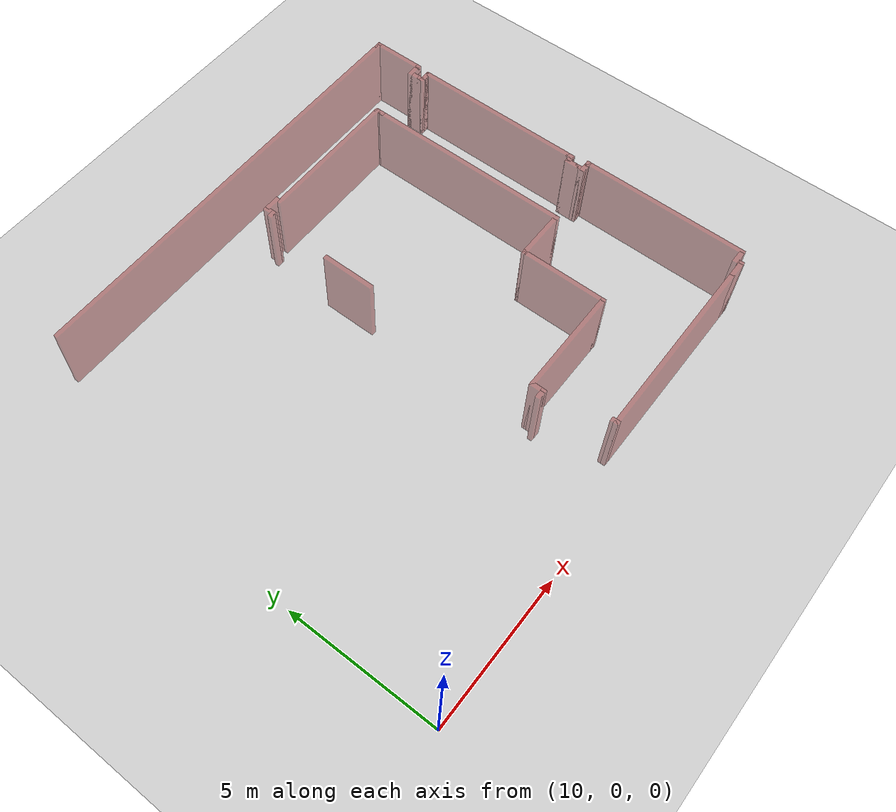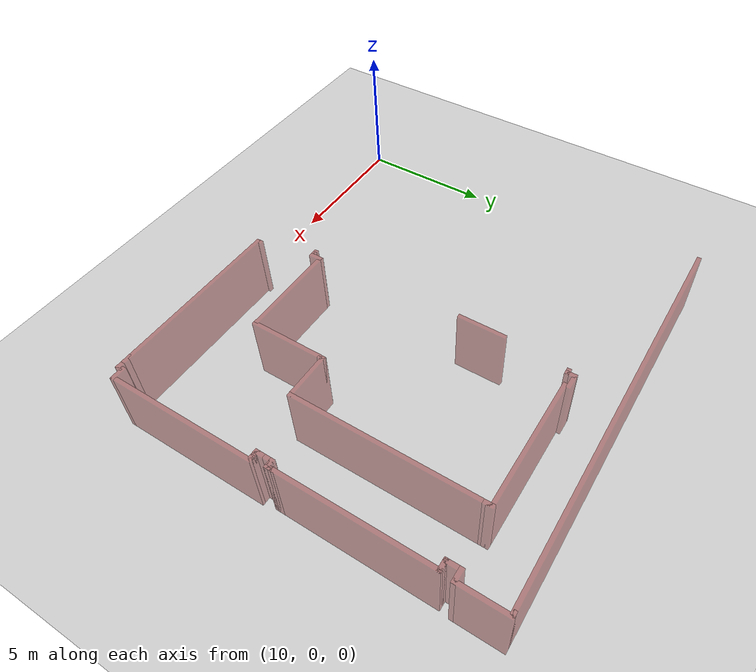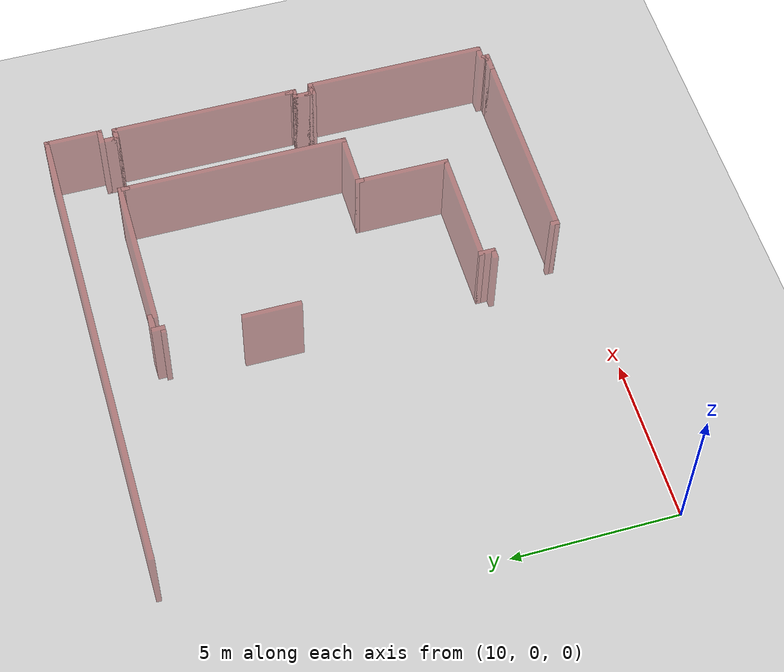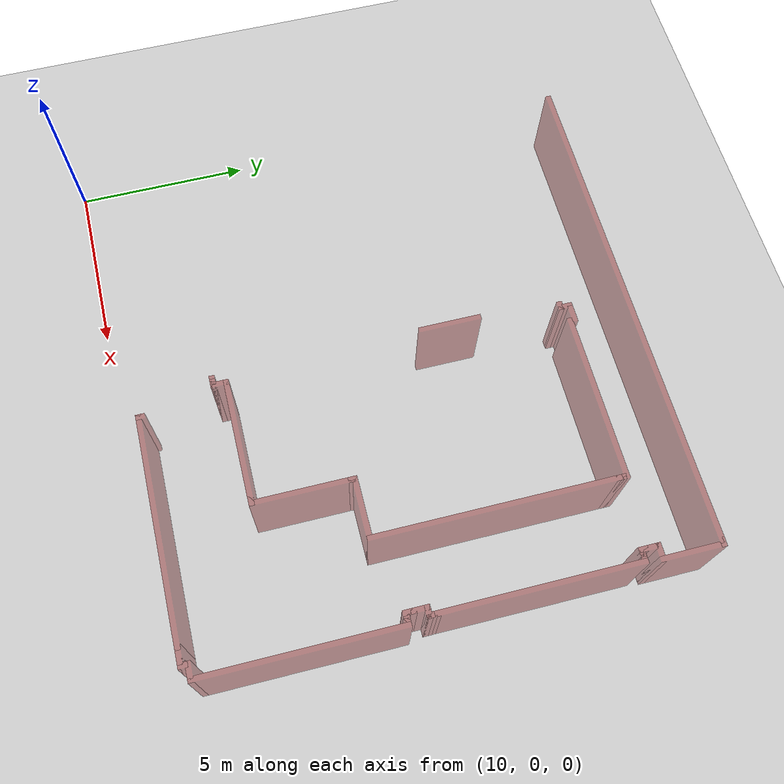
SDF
<sdf version="1.7">
 <world name="default">
  <model name="ground_plane">
   <static>1</static>
   <link name="link">
    <collision name="collision">
     <geometry><plane><normal>0 0 1</normal><size>150 150</size></plane></geometry>
     <surface>
      <contact><collide_bitmask>65535</collide_bitmask></contact>
      <friction><ode><mu>100</mu><mu2>50</mu2></ode></friction>
     </surface>
    </collision>
    <visual name="visual">
     <cast_shadows>0</cast_shadows>
     <geometry><plane><normal>0 0 1</normal><size>100 100</size></plane></geometry>
     <material>
      <ambient>0.8 0.8 0.8 1.0</ambient>
      <diffuse>0.8 0.8 0.8 1.0</diffuse>
      <specular>0.1 0.1 0.1 1.0</specular>
      <pbr><metal><albedo>0.8 0.8 0.8 1.0</albedo><metalness>0.0</metalness><roughness>0.9</roughness></metal></pbr>
     </material>
    </visual>
   </link>
  </model>
  <model name="acopian_4th_floor">
   <pose>-1.6204 7.29653 0 0 -0 0</pose>
   <link name="Wall_284">
    <collision name="Wall_284_Collision">
     <geometry><box><size>14.25 0.15 2.5</size></box></geometry>
     <pose>0 0 1.25 0 -0 0</pose>
    </collision>
    <visual name="Wall_284_Visual">
     <pose>0 0 1.25 0 -0 0</pose>
     <geometry><box><size>14.25 0.15 2.5</size></box></geometry>
     <material>
      <ambient>0.5 0.0 0.0 0.4</ambient>
      <diffuse>0.5 0.0 0.0 0.4</diffuse>
      <specular>0.1 0.1 0.1 0.4</specular>
      <pbr><metal><albedo>0.5 0.0 0.0 0.4</albedo><metalness>0.1</metalness><roughness>0.8</roughness></metal></pbr>
     </material>
     <meta><layer>0</layer></meta>
    </visual>
    <pose>20.1253 7.22153 0 0 -0 0</pose>
   </link>
   <link name="Wall_288">
    <collision name="Wall_288_Collision">
     <geometry><box><size>0.25 0.15 2.5</size></box></geometry>
     <pose>0 0 1.25 0 -0 0</pose>
    </collision>
    <visual name="Wall_288_Visual">
     <pose>0 0 1.25 0 -0 0</pose>
     <geometry><box><size>0.25 0.15 2.5</size></box></geometry>
     <material>
      <ambient>0.5 0.0 0.0 0.4</ambient>
      <diffuse>0.5 0.0 0.0 0.4</diffuse>
      <specular>0.1 0.1 0.1 0.4</specular>
      <pbr><metal><albedo>0.5 0.0 0.0 0.4</albedo><metalness>0.1</metalness><roughness>0.8</roughness></metal></pbr>
     </material>
     <meta><layer>0</layer></meta>
    </visual>
    <pose>27.2253 7.22153 0 0 -0 0</pose>
   </link>
   <link name="Wall_289">
    <collision name="Wall_289_Collision">
     <geometry><box><size>1.75 0.15 2.5</size></box></geometry>
     <pose>0 0 1.25 0 -0 0</pose>
    </collision>
    <visual name="Wall_289_Visual">
     <pose>0 0 1.25 0 -0 0</pose>
     <geometry><box><size>1.75 0.15 2.5</size></box></geometry>
     <material>
      <ambient>0.5 0.0 0.0 0.4</ambient>
      <diffuse>0.5 0.0 0.0 0.4</diffuse>
      <specular>0.1 0.1 0.1 0.4</specular>
      <pbr><metal><albedo>0.5 0.0 0.0 0.4</albedo><metalness>0.1</metalness><roughness>0.8</roughness></metal></pbr>
     </material>
     <meta><layer>0</layer></meta>
    </visual>
    <pose>27.2753 6.42153 0 0 -0 -1.5708</pose>
   </link>
   <link name="Wall_294">
    <collision name="Wall_294_Collision">
     <geometry><box><size>0.5 0.15 2.5</size></box></geometry>
     <pose>0 0 1.25 0 -0 0</pose>
    </collision>
    <visual name="Wall_294_Visual">
     <pose>0 0 1.25 0 -0 0</pose>
     <geometry><box><size>0.5 0.15 2.5</size></box></geometry>
     <material>
      <ambient>0.5 0.0 0.0 0.4</ambient>
      <diffuse>0.5 0.0 0.0 0.4</diffuse>
      <specular>0.1 0.1 0.1 0.4</specular>
      <pbr><metal><albedo>0.5 0.0 0.0 0.4</albedo><metalness>0.1</metalness><roughness>0.8</roughness></metal></pbr>
     </material>
     <meta><layer>0</layer></meta>
    </visual>
    <pose>27.1003 5.62153 0 0 -0 3.14159</pose>
   </link>
   <link name="Wall_295">
    <collision name="Wall_295_Collision">
     <geometry><box><size>0.5 0.15 2.5</size></box></geometry>
     <pose>0 0 1.25 0 -0 0</pose>
    </collision>
    <visual name="Wall_295_Visual">
     <pose>0 0 1.25 0 -0 0</pose>
     <geometry><box><size>0.5 0.15 2.5</size></box></geometry>
     <material>
      <ambient>0.5 0.0 0.0 0.4</ambient>
      <diffuse>0.5 0.0 0.0 0.4</diffuse>
      <specular>0.1 0.1 0.1 0.4</specular>
      <pbr><metal><albedo>0.5 0.0 0.0 0.4</albedo><metalness>0.1</metalness><roughness>0.8</roughness></metal></pbr>
     </material>
     <meta><layer>0</layer></meta>
    </visual>
    <pose>26.9253 5.44653 0 0 -0 -1.5708</pose>
   </link>
   <link name="Wall_300">
    <collision name="Wall_300_Collision">
     <geometry><box><size>0.25 0.15 2.5</size></box></geometry>
     <pose>0 0 1.25 0 -0 0</pose>
    </collision>
    <visual name="Wall_300_Visual">
     <pose>0 0 1.25 0 -0 0</pose>
     <geometry><box><size>0.25 0.15 2.5</size></box></geometry>
     <material>
      <ambient>0.5 0.0 0.0 0.4</ambient>
      <diffuse>0.5 0.0 0.0 0.4</diffuse>
      <specular>0.1 0.1 0.1 0.4</specular>
      <pbr><metal><albedo>0.5 0.0 0.0 0.4</albedo><metalness>0.1</metalness><roughness>0.8</roughness></metal></pbr>
     </material>
     <meta><layer>0</layer></meta>
    </visual>
    <pose>26.9253 5.22153 0 0 -0 -1.5708</pose>
   </link>
   <link name="Wall_301">
    <collision name="Wall_301_Collision">
     <geometry><box><size>0.25 0.15 2.5</size></box></geometry>
     <pose>0 0 1.25 0 -0 0</pose>
    </collision>
    <visual name="Wall_301_Visual">
     <pose>0 0 1.25 0 -0 0</pose>
     <geometry><box><size>0.25 0.15 2.5</size></box></geometry>
     <material>
      <ambient>0.5 0.0 0.0 0.4</ambient>
      <diffuse>0.5 0.0 0.0 0.4</diffuse>
      <specular>0.1 0.1 0.1 0.4</specular>
      <pbr><metal><albedo>0.5 0.0 0.0 0.4</albedo><metalness>0.1</metalness><roughness>0.8</roughness></metal></pbr>
     </material>
     <meta><layer>0</layer></meta>
    </visual>
    <pose>26.9753 5.17153 0 0 -0 0</pose>
   </link>
   <link name="Wall_302">
    <collision name="Wall_302_Collision">
     <geometry><box><size>0.25 0.15 2.5</size></box></geometry>
     <pose>0 0 1.25 0 -0 0</pose>
    </collision>
    <visual name="Wall_302_Visual">
     <pose>0 0 1.25 0 -0 0</pose>
     <geometry><box><size>0.25 0.15 2.5</size></box></geometry>
     <material>
      <ambient>0.5 0.0 0.0 0.4</ambient>
      <diffuse>0.5 0.0 0.0 0.4</diffuse>
      <specular>0.1 0.1 0.1 0.4</specular>
      <pbr><metal><albedo>0.5 0.0 0.0 0.4</albedo><metalness>0.1</metalness><roughness>0.8</roughness></metal></pbr>
     </material>
     <meta><layer>0</layer></meta>
    </visual>
    <pose>27.0753 5.17153 0 0 -0 0</pose>
   </link>
   <link name="Wall_303">
    <collision name="Wall_303_Collision">
     <geometry><box><size>0.25 0.15 2.5</size></box></geometry>
     <pose>0 0 1.25 0 -0 0</pose>
    </collision>
    <visual name="Wall_303_Visual">
     <pose>0 0 1.25 0 -0 0</pose>
     <geometry><box><size>0.25 0.15 2.5</size></box></geometry>
     <material>
      <ambient>0.5 0.0 0.0 0.4</ambient>
      <diffuse>0.5 0.0 0.0 0.4</diffuse>
      <specular>0.1 0.1 0.1 0.4</specular>
      <pbr><metal><albedo>0.5 0.0 0.0 0.4</albedo><metalness>0.1</metalness><roughness>0.8</roughness></metal></pbr>
     </material>
     <meta><layer>0</layer></meta>
    </visual>
    <pose>27.1753 5.17153 0 0 -0 0</pose>
   </link>
   <link name="Wall_304">
    <collision name="Wall_304_Collision">
     <geometry><box><size>5.5 0.15 2.5</size></box></geometry>
     <pose>0 0 1.25 0 -0 0</pose>
    </collision>
    <visual name="Wall_304_Visual">
     <pose>0 0 1.25 0 -0 0</pose>
     <geometry><box><size>5.5 0.15 2.5</size></box></geometry>
     <material>
      <ambient>0.5 0.0 0.0 0.4</ambient>
      <diffuse>0.5 0.0 0.0 0.4</diffuse>
      <specular>0.1 0.1 0.1 0.4</specular>
      <pbr><metal><albedo>0.5 0.0 0.0 0.4</albedo><metalness>0.1</metalness><roughness>0.8</roughness></metal></pbr>
     </material>
     <meta><layer>0</layer></meta>
    </visual>
    <pose>27.2253 2.49653 0 0 -0 -1.5708</pose>
   </link>
   <link name="Wall_306">
    <collision name="Wall_306_Collision">
     <geometry><box><size>0.25 0.15 2.5</size></box></geometry>
     <pose>0 0 1.25 0 -0 0</pose>
    </collision>
    <visual name="Wall_306_Visual">
     <pose>0 0 1.25 0 -0 0</pose>
     <geometry><box><size>0.25 0.15 2.5</size></box></geometry>
     <material>
      <ambient>0.5 0.0 0.0 0.4</ambient>
      <diffuse>0.5 0.0 0.0 0.4</diffuse>
      <specular>0.1 0.1 0.1 0.4</specular>
      <pbr><metal><albedo>0.5 0.0 0.0 0.4</albedo><metalness>0.1</metalness><roughness>0.8</roughness></metal></pbr>
     </material>
     <meta><layer>0</layer></meta>
    </visual>
    <pose>27.2253 -0.228473 0 0 -0 -1.5708</pose>
   </link>
   <link name="Wall_307">
    <collision name="Wall_307_Collision">
     <geometry><box><size>0.25 0.15 2.5</size></box></geometry>
     <pose>0 0 1.25 0 -0 0</pose>
    </collision>
    <visual name="Wall_307_Visual">
     <pose>0 0 1.25 0 -0 0</pose>
     <geometry><box><size>0.25 0.15 2.5</size></box></geometry>
     <material>
      <ambient>0.5 0.0 0.0 0.4</ambient>
      <diffuse>0.5 0.0 0.0 0.4</diffuse>
      <specular>0.1 0.1 0.1 0.4</specular>
      <pbr><metal><albedo>0.5 0.0 0.0 0.4</albedo><metalness>0.1</metalness><roughness>0.8</roughness></metal></pbr>
     </material>
     <meta><layer>0</layer></meta>
    </visual>
    <pose>27.2253 -0.328473 0 0 -0 -1.5708</pose>
   </link>
   <link name="Wall_308">
    <collision name="Wall_308_Collision">
     <geometry><box><size>0.25 0.15 2.5</size></box></geometry>
     <pose>0 0 1.25 0 -0 0</pose>
    </collision>
    <visual name="Wall_308_Visual">
     <pose>0 0 1.25 0 -0 0</pose>
     <geometry><box><size>0.25 0.15 2.5</size></box></geometry>
     <material>
      <ambient>0.5 0.0 0.0 0.4</ambient>
      <diffuse>0.5 0.0 0.0 0.4</diffuse>
      <specular>0.1 0.1 0.1 0.4</specular>
      <pbr><metal><albedo>0.5 0.0 0.0 0.4</albedo><metalness>0.1</metalness><roughness>0.8</roughness></metal></pbr>
     </material>
     <meta><layer>0</layer></meta>
    </visual>
    <pose>27.1753 -0.378473 0 0 -0 3.14159</pose>
   </link>
   <link name="Wall_309">
    <collision name="Wall_309_Collision">
     <geometry><box><size>0.25 0.15 2.5</size></box></geometry>
     <pose>0 0 1.25 0 -0 0</pose>
    </collision>
    <visual name="Wall_309_Visual">
     <pose>0 0 1.25 0 -0 0</pose>
     <geometry><box><size>0.25 0.15 2.5</size></box></geometry>
     <material>
      <ambient>0.5 0.0 0.0 0.4</ambient>
      <diffuse>0.5 0.0 0.0 0.4</diffuse>
      <specular>0.1 0.1 0.1 0.4</specular>
      <pbr><metal><albedo>0.5 0.0 0.0 0.4</albedo><metalness>0.1</metalness><roughness>0.8</roughness></metal></pbr>
     </material>
     <meta><layer>0</layer></meta>
    </visual>
    <pose>27.0753 -0.378473 0 0 -0 3.14159</pose>
   </link>
   <link name="Wall_310">
    <collision name="Wall_310_Collision">
     <geometry><box><size>0.5 0.15 2.5</size></box></geometry>
     <pose>0 0 1.25 0 -0 0</pose>
    </collision>
    <visual name="Wall_310_Visual">
     <pose>0 0 1.25 0 -0 0</pose>
     <geometry><box><size>0.5 0.15 2.5</size></box></geometry>
     <material>
      <ambient>0.5 0.0 0.0 0.4</ambient>
      <diffuse>0.5 0.0 0.0 0.4</diffuse>
      <specular>0.1 0.1 0.1 0.4</specular>
      <pbr><metal><albedo>0.5 0.0 0.0 0.4</albedo><metalness>0.1</metalness><roughness>0.8</roughness></metal></pbr>
     </material>
     <meta><layer>0</layer></meta>
    </visual>
    <pose>27.0253 -0.553473 0 0 -0 -1.5708</pose>
   </link>
   <link name="Wall_311">
    <collision name="Wall_311_Collision">
     <geometry><box><size>0.25 0.15 2.5</size></box></geometry>
     <pose>0 0 1.25 0 -0 0</pose>
    </collision>
    <visual name="Wall_311_Visual">
     <pose>0 0 1.25 0 -0 0</pose>
     <geometry><box><size>0.25 0.15 2.5</size></box></geometry>
     <material>
      <ambient>0.5 0.0 0.0 0.4</ambient>
      <diffuse>0.5 0.0 0.0 0.4</diffuse>
      <specular>0.1 0.1 0.1 0.4</specular>
      <pbr><metal><albedo>0.5 0.0 0.0 0.4</albedo><metalness>0.1</metalness><roughness>0.8</roughness></metal></pbr>
     </material>
     <meta><layer>0</layer></meta>
    </visual>
    <pose>27.0253 -0.778473 0 0 -0 -1.5708</pose>
   </link>
   <link name="Wall_312">
    <collision name="Wall_312_Collision">
     <geometry><box><size>0.25 0.15 2.5</size></box></geometry>
     <pose>0 0 1.25 0 -0 0</pose>
    </collision>
    <visual name="Wall_312_Visual">
     <pose>0 0 1.25 0 -0 0</pose>
     <geometry><box><size>0.25 0.15 2.5</size></box></geometry>
     <material>
      <ambient>0.5 0.0 0.0 0.4</ambient>
      <diffuse>0.5 0.0 0.0 0.4</diffuse>
      <specular>0.1 0.1 0.1 0.4</specular>
      <pbr><metal><albedo>0.5 0.0 0.0 0.4</albedo><metalness>0.1</metalness><roughness>0.8</roughness></metal></pbr>
     </material>
     <meta><layer>0</layer></meta>
    </visual>
    <pose>27.0253 -0.878473 0 0 -0 -1.5708</pose>
   </link>
   <link name="Wall_313">
    <collision name="Wall_313_Collision">
     <geometry><box><size>0.25 0.15 2.5</size></box></geometry>
     <pose>0 0 1.25 0 -0 0</pose>
    </collision>
    <visual name="Wall_313_Visual">
     <pose>0 0 1.25 0 -0 0</pose>
     <geometry><box><size>0.25 0.15 2.5</size></box></geometry>
     <material>
      <ambient>0.5 0.0 0.0 0.4</ambient>
      <diffuse>0.5 0.0 0.0 0.4</diffuse>
      <specular>0.1 0.1 0.1 0.4</specular>
      <pbr><metal><albedo>0.5 0.0 0.0 0.4</albedo><metalness>0.1</metalness><roughness>0.8</roughness></metal></pbr>
     </material>
     <meta><layer>0</layer></meta>
    </visual>
    <pose>27.0753 -0.928473 0 0 -0 0</pose>
   </link>
   <link name="Wall_314">
    <collision name="Wall_314_Collision">
     <geometry><box><size>0.25 0.15 2.5</size></box></geometry>
     <pose>0 0 1.25 0 -0 0</pose>
    </collision>
    <visual name="Wall_314_Visual">
     <pose>0 0 1.25 0 -0 0</pose>
     <geometry><box><size>0.25 0.15 2.5</size></box></geometry>
     <material>
      <ambient>0.5 0.0 0.0 0.4</ambient>
      <diffuse>0.5 0.0 0.0 0.4</diffuse>
      <specular>0.1 0.1 0.1 0.4</specular>
      <pbr><metal><albedo>0.5 0.0 0.0 0.4</albedo><metalness>0.1</metalness><roughness>0.8</roughness></metal></pbr>
     </material>
     <meta><layer>0</layer></meta>
    </visual>
    <pose>27.1753 -0.928473 0 0 -0 0</pose>
   </link>
   <link name="Wall_315">
    <collision name="Wall_315_Collision">
     <geometry><box><size>0.25 0.15 2.5</size></box></geometry>
     <pose>0 0 1.25 0 -0 0</pose>
    </collision>
    <visual name="Wall_315_Visual">
     <pose>0 0 1.25 0 -0 0</pose>
     <geometry><box><size>0.25 0.15 2.5</size></box></geometry>
     <material>
      <ambient>0.5 0.0 0.0 0.4</ambient>
      <diffuse>0.5 0.0 0.0 0.4</diffuse>
      <specular>0.1 0.1 0.1 0.4</specular>
      <pbr><metal><albedo>0.5 0.0 0.0 0.4</albedo><metalness>0.1</metalness><roughness>0.8</roughness></metal></pbr>
     </material>
     <meta><layer>0</layer></meta>
    </visual>
    <pose>27.2753 -0.928473 0 0 -0 0</pose>
   </link>
   <link name="Wall_316">
    <collision name="Wall_316_Collision">
     <geometry><box><size>5.49813 0.15 2.5</size></box></geometry>
     <pose>0 0 1.25 0 -0 0</pose>
    </collision>
    <visual name="Wall_316_Visual">
     <pose>0 0 1.25 0 -0 0</pose>
     <geometry><box><size>5.49813 0.15 2.5</size></box></geometry>
     <material>
      <ambient>0.5 0.0 0.0 0.4</ambient>
      <diffuse>0.5 0.0 0.0 0.4</diffuse>
      <specular>0.1 0.1 0.1 0.4</specular>
      <pbr><metal><albedo>0.5 0.0 0.0 0.4</albedo><metalness>0.1</metalness><roughness>0.8</roughness></metal></pbr>
     </material>
     <meta><layer>0</layer></meta>
    </visual>
    <pose>27.3253 -3.60254 0 0 -0 -1.5708</pose>
   </link>
   <link name="Wall_329">
    <collision name="Wall_329_Collision">
     <geometry><box><size>0.25 0.15 2.5</size></box></geometry>
     <pose>0 0 1.25 0 -0 0</pose>
    </collision>
    <visual name="Wall_329_Visual">
     <pose>0 0 1.25 0 -0 0</pose>
     <geometry><box><size>0.25 0.15 2.5</size></box></geometry>
     <material>
      <ambient>0.5 0.0 0.0 0.4</ambient>
      <diffuse>0.5 0.0 0.0 0.4</diffuse>
      <specular>0.1 0.1 0.1 0.4</specular>
      <pbr><metal><albedo>0.5 0.0 0.0 0.4</albedo><metalness>0.1</metalness><roughness>0.8</roughness></metal></pbr>
     </material>
     <meta><layer>0</layer></meta>
    </visual>
    <pose>20.4028 -6.406 0 0 -0 -1.5708</pose>
   </link>
   <link name="Wall_330">
    <collision name="Wall_330_Collision">
     <geometry><box><size>6.25 0.15 2.5</size></box></geometry>
     <pose>0 0 1.25 0 -0 0</pose>
    </collision>
    <visual name="Wall_330_Visual">
     <pose>0 0 1.25 0 -0 0</pose>
     <geometry><box><size>6.25 0.15 2.5</size></box></geometry>
     <material>
      <ambient>0.5 0.0 0.0 0.4</ambient>
      <diffuse>0.5 0.0 0.0 0.4</diffuse>
      <specular>0.1 0.1 0.1 0.4</specular>
      <pbr><metal><albedo>0.5 0.0 0.0 0.4</albedo><metalness>0.1</metalness><roughness>0.8</roughness></metal></pbr>
     </material>
     <meta><layer>0</layer></meta>
    </visual>
    <pose>23.4528 -6.456 0 0 -0 0</pose>
   </link>
   <link name="Wall_334">
    <collision name="Wall_334_Collision">
     <geometry><box><size>0.5 0.15 2.5</size></box></geometry>
     <pose>0 0 1.25 0 -0 0</pose>
    </collision>
    <visual name="Wall_334_Visual">
     <pose>0 0 1.25 0 -0 0</pose>
     <geometry><box><size>0.5 0.15 2.5</size></box></geometry>
     <material>
      <ambient>0.5 0.0 0.0 0.4</ambient>
      <diffuse>0.5 0.0 0.0 0.4</diffuse>
      <specular>0.1 0.1 0.1 0.4</specular>
      <pbr><metal><albedo>0.5 0.0 0.0 0.4</albedo><metalness>0.1</metalness><roughness>0.8</roughness></metal></pbr>
     </material>
     <meta><layer>0</layer></meta>
    </visual>
    <pose>26.6778 -6.456 0 0 -0 0</pose>
   </link>
   <link name="Wall_341">
    <collision name="Wall_341_Collision">
     <geometry><box><size>0.25 0.15 2.5</size></box></geometry>
     <pose>0 0 1.25 0 -0 0</pose>
    </collision>
    <visual name="Wall_341_Visual">
     <pose>0 0 1.25 0 -0 0</pose>
     <geometry><box><size>0.25 0.15 2.5</size></box></geometry>
     <material>
      <ambient>0.5 0.0 0.0 0.4</ambient>
      <diffuse>0.5 0.0 0.0 0.4</diffuse>
      <specular>0.1 0.1 0.1 0.4</specular>
      <pbr><metal><albedo>0.5 0.0 0.0 0.4</albedo><metalness>0.1</metalness><roughness>0.8</roughness></metal></pbr>
     </material>
     <meta><layer>0</layer></meta>
    </visual>
    <pose>26.9028 -6.456 0 0 -0 0</pose>
   </link>
   <link name="Wall_342">
    <collision name="Wall_342_Collision">
     <geometry><box><size>0.253251 0.15 2.5</size></box></geometry>
     <pose>0 0 1.25 0 -0 0</pose>
    </collision>
    <visual name="Wall_342_Visual">
     <pose>0 0 1.25 0 -0 0</pose>
     <geometry><box><size>0.253251 0.15 2.5</size></box></geometry>
     <material>
      <ambient>0.5 0.0 0.0 0.4</ambient>
      <diffuse>0.5 0.0 0.0 0.4</diffuse>
      <specular>0.1 0.1 0.1 0.4</specular>
      <pbr><metal><albedo>0.5 0.0 0.0 0.4</albedo><metalness>0.1</metalness><roughness>0.8</roughness></metal></pbr>
     </material>
     <meta><layer>0</layer></meta>
    </visual>
    <pose>26.9528 -6.40437 0 0 -0 1.5708</pose>
   </link>
   <link name="Wall_345">
    <collision name="Wall_345_Collision">
     <geometry><box><size>0.525 0.15 2.5</size></box></geometry>
     <pose>0 0 1.25 0 -0 0</pose>
    </collision>
    <visual name="Wall_345_Visual">
     <pose>0 0 1.25 0 -0 0</pose>
     <geometry><box><size>0.525 0.15 2.5</size></box></geometry>
     <material>
      <ambient>0.5 0.0 0.0 0.4</ambient>
      <diffuse>0.5 0.0 0.0 0.4</diffuse>
      <specular>0.1 0.1 0.1 0.4</specular>
      <pbr><metal><albedo>0.5 0.0 0.0 0.4</albedo><metalness>0.1</metalness><roughness>0.8</roughness></metal></pbr>
     </material>
     <meta><layer>0</layer></meta>
    </visual>
    <pose>27.1378 -6.2766 0 0 -0 3.14159</pose>
   </link>
   <link name="Wall_381">
    <collision name="Wall_381_Collision">
     <geometry><box><size>1.75 0.15 2.5</size></box></geometry>
     <pose>0 0 1.25 0 -0 0</pose>
    </collision>
    <visual name="Wall_381_Visual">
     <pose>0 0 1.25 0 -0 0</pose>
     <geometry><box><size>1.75 0.15 2.5</size></box></geometry>
     <material>
      <ambient>0.5 0.0 0.0 0.4</ambient>
      <diffuse>0.5 0.0 0.0 0.4</diffuse>
      <specular>0.1 0.1 0.1 0.4</specular>
      <pbr><metal><albedo>0.5 0.0 0.0 0.4</albedo><metalness>0.1</metalness><roughness>0.8</roughness></metal></pbr>
     </material>
     <meta><layer>0</layer></meta>
    </visual>
    <pose>19.7117 2.2502 0 0 -0 -1.5708</pose>
   </link>
   <link name="Wall_406">
    <collision name="Wall_406_Collision">
     <geometry><box><size>0.25 0.15 2.5</size></box></geometry>
     <pose>0 0 1.25 0 -0 0</pose>
    </collision>
    <visual name="Wall_406_Visual">
     <pose>0 0 1.25 0 -0 0</pose>
     <geometry><box><size>0.25 0.15 2.5</size></box></geometry>
     <material>
      <ambient>0.5 0.0 0.0 0.4</ambient>
      <diffuse>0.5 0.0 0.0 0.4</diffuse>
      <specular>0.1 0.1 0.1 0.4</specular>
      <pbr><metal><albedo>0.5 0.0 0.0 0.4</albedo><metalness>0.1</metalness><roughness>0.8</roughness></metal></pbr>
     </material>
     <meta><layer>0</layer></meta>
    </visual>
    <pose>19.8125 -4.37699 0 0 -0 0</pose>
   </link>
   <link name="Wall_407">
    <collision name="Wall_407_Collision">
     <geometry><box><size>0.25 0.15 2.5</size></box></geometry>
     <pose>0 0 1.25 0 -0 0</pose>
    </collision>
    <visual name="Wall_407_Visual">
     <pose>0 0 1.25 0 -0 0</pose>
     <geometry><box><size>0.25 0.15 2.5</size></box></geometry>
     <material>
      <ambient>0.5 0.0 0.0 0.4</ambient>
      <diffuse>0.5 0.0 0.0 0.4</diffuse>
      <specular>0.1 0.1 0.1 0.4</specular>
      <pbr><metal><albedo>0.5 0.0 0.0 0.4</albedo><metalness>0.1</metalness><roughness>0.8</roughness></metal></pbr>
     </material>
     <meta><layer>0</layer></meta>
    </visual>
    <pose>19.9125 -4.37699 0 0 -0 0</pose>
   </link>
   <link name="Wall_408">
    <collision name="Wall_408_Collision">
     <geometry><box><size>0.5 0.15 2.5</size></box></geometry>
     <pose>0 0 1.25 0 -0 0</pose>
    </collision>
    <visual name="Wall_408_Visual">
     <pose>0 0 1.25 0 -0 0</pose>
     <geometry><box><size>0.5 0.15 2.5</size></box></geometry>
     <material>
      <ambient>0.5 0.0 0.0 0.4</ambient>
      <diffuse>0.5 0.0 0.0 0.4</diffuse>
      <specular>0.1 0.1 0.1 0.4</specular>
      <pbr><metal><albedo>0.5 0.0 0.0 0.4</albedo><metalness>0.1</metalness><roughness>0.8</roughness></metal></pbr>
     </material>
     <meta><layer>0</layer></meta>
    </visual>
    <pose>19.9625 -4.20199 0 0 -0 1.5708</pose>
   </link>
   <link name="Wall_409">
    <collision name="Wall_409_Collision">
     <geometry><box><size>3.5 0.15 2.5</size></box></geometry>
     <pose>0 0 1.25 0 -0 0</pose>
    </collision>
    <visual name="Wall_409_Visual">
     <pose>0 0 1.25 0 -0 0</pose>
     <geometry><box><size>3.5 0.15 2.5</size></box></geometry>
     <material>
      <ambient>0.5 0.0 0.0 0.4</ambient>
      <diffuse>0.5 0.0 0.0 0.4</diffuse>
      <specular>0.1 0.1 0.1 0.4</specular>
      <pbr><metal><albedo>0.5 0.0 0.0 0.4</albedo><metalness>0.1</metalness><roughness>0.8</roughness></metal></pbr>
     </material>
     <meta><layer>0</layer></meta>
    </visual>
    <pose>21.6375 -4.02699 0 0 -0 0</pose>
   </link>
   <link name="Wall_410">
    <collision name="Wall_410_Collision">
     <geometry><box><size>0.25 0.15 2.5</size></box></geometry>
     <pose>0 0 1.25 0 -0 0</pose>
    </collision>
    <visual name="Wall_410_Visual">
     <pose>0 0 1.25 0 -0 0</pose>
     <geometry><box><size>0.25 0.15 2.5</size></box></geometry>
     <material>
      <ambient>0.5 0.0 0.0 0.4</ambient>
      <diffuse>0.5 0.0 0.0 0.4</diffuse>
      <specular>0.1 0.1 0.1 0.4</specular>
      <pbr><metal><albedo>0.5 0.0 0.0 0.4</albedo><metalness>0.1</metalness><roughness>0.8</roughness></metal></pbr>
     </material>
     <meta><layer>0</layer></meta>
    </visual>
    <pose>23.3625 -4.02699 0 0 -0 0</pose>
   </link>
   <link name="Wall_411">
    <collision name="Wall_411_Collision">
     <geometry><box><size>2.75 0.15 2.5</size></box></geometry>
     <pose>0 0 1.25 0 -0 0</pose>
    </collision>
    <visual name="Wall_411_Visual">
     <pose>0 0 1.25 0 -0 0</pose>
     <geometry><box><size>2.75 0.15 2.5</size></box></geometry>
     <material>
      <ambient>0.5 0.0 0.0 0.4</ambient>
      <diffuse>0.5 0.0 0.0 0.4</diffuse>
      <specular>0.1 0.1 0.1 0.4</specular>
      <pbr><metal><albedo>0.5 0.0 0.0 0.4</albedo><metalness>0.1</metalness><roughness>0.8</roughness></metal></pbr>
     </material>
     <meta><layer>0</layer></meta>
    </visual>
    <pose>23.4125 -2.72699 0 0 -0 1.5708</pose>
   </link>
   <link name="Wall_413">
    <collision name="Wall_413_Collision">
     <geometry><box><size>0.25 0.15 2.5</size></box></geometry>
     <pose>0 0 1.25 0 -0 0</pose>
    </collision>
    <visual name="Wall_413_Visual">
     <pose>0 0 1.25 0 -0 0</pose>
     <geometry><box><size>0.25 0.15 2.5</size></box></geometry>
     <material>
      <ambient>0.5 0.0 0.0 0.4</ambient>
      <diffuse>0.5 0.0 0.0 0.4</diffuse>
      <specular>0.1 0.1 0.1 0.4</specular>
      <pbr><metal><albedo>0.5 0.0 0.0 0.4</albedo><metalness>0.1</metalness><roughness>0.8</roughness></metal></pbr>
     </material>
     <meta><layer>0</layer></meta>
    </visual>
    <pose>23.4125 -1.37699 0 0 -0 1.5708</pose>
   </link>
   <link name="Wall_414">
    <collision name="Wall_414_Collision">
     <geometry><box><size>1.75 0.15 2.5</size></box></geometry>
     <pose>0 0 1.25 0 -0 0</pose>
    </collision>
    <visual name="Wall_414_Visual">
     <pose>0 0 1.25 0 -0 0</pose>
     <geometry><box><size>1.75 0.15 2.5</size></box></geometry>
     <material>
      <ambient>0.5 0.0 0.0 0.4</ambient>
      <diffuse>0.5 0.0 0.0 0.4</diffuse>
      <specular>0.1 0.1 0.1 0.4</specular>
      <pbr><metal><albedo>0.5 0.0 0.0 0.4</albedo><metalness>0.1</metalness><roughness>0.8</roughness></metal></pbr>
     </material>
     <meta><layer>0</layer></meta>
    </visual>
    <pose>24.2125 -1.32699 0 0 -0 0</pose>
   </link>
   <link name="Wall_416">
    <collision name="Wall_416_Collision">
     <geometry><box><size>6.75 0.15 2.5</size></box></geometry>
     <pose>0 0 1.25 0 -0 0</pose>
    </collision>
    <visual name="Wall_416_Visual">
     <pose>0 0 1.25 0 -0 0</pose>
     <geometry><box><size>6.75 0.15 2.5</size></box></geometry>
     <material>
      <ambient>0.5 0.0 0.0 0.4</ambient>
      <diffuse>0.5 0.0 0.0 0.4</diffuse>
      <specular>0.1 0.1 0.1 0.4</specular>
      <pbr><metal><albedo>0.5 0.0 0.0 0.4</albedo><metalness>0.1</metalness><roughness>0.8</roughness></metal></pbr>
     </material>
     <meta><layer>0</layer></meta>
    </visual>
    <pose>25.0125 1.97301 0 0 -0 1.5708</pose>
   </link>
   <link name="Wall_418">
    <collision name="Wall_418_Collision">
     <geometry><box><size>0.25 0.15 2.5</size></box></geometry>
     <pose>0 0 1.25 0 -0 0</pose>
    </collision>
    <visual name="Wall_418_Visual">
     <pose>0 0 1.25 0 -0 0</pose>
     <geometry><box><size>0.25 0.15 2.5</size></box></geometry>
     <material>
      <ambient>0.5 0.0 0.0 0.4</ambient>
      <diffuse>0.5 0.0 0.0 0.4</diffuse>
      <specular>0.1 0.1 0.1 0.4</specular>
      <pbr><metal><albedo>0.5 0.0 0.0 0.4</albedo><metalness>0.1</metalness><roughness>0.8</roughness></metal></pbr>
     </material>
     <meta><layer>0</layer></meta>
    </visual>
    <pose>25.0125 5.32301 0 0 -0 1.5708</pose>
   </link>
   <link name="Wall_419">
    <collision name="Wall_419_Collision">
     <geometry><box><size>0.25 0.15 2.5</size></box></geometry>
     <pose>0 0 1.25 0 -0 0</pose>
    </collision>
    <visual name="Wall_419_Visual">
     <pose>0 0 1.25 0 -0 0</pose>
     <geometry><box><size>0.25 0.15 2.5</size></box></geometry>
     <material>
      <ambient>0.5 0.0 0.0 0.4</ambient>
      <diffuse>0.5 0.0 0.0 0.4</diffuse>
      <specular>0.1 0.1 0.1 0.4</specular>
      <pbr><metal><albedo>0.5 0.0 0.0 0.4</albedo><metalness>0.1</metalness><roughness>0.8</roughness></metal></pbr>
     </material>
     <meta><layer>0</layer></meta>
    </visual>
    <pose>25.0125 5.42301 0 0 -0 1.5708</pose>
   </link>
   <link name="Wall_420">
    <collision name="Wall_420_Collision">
     <geometry><box><size>4.75 0.15 2.5</size></box></geometry>
     <pose>0 0 1.25 0 -0 0</pose>
    </collision>
    <visual name="Wall_420_Visual">
     <pose>0 0 1.25 0 -0 0</pose>
     <geometry><box><size>4.75 0.15 2.5</size></box></geometry>
     <material>
      <ambient>0.5 0.0 0.0 0.4</ambient>
      <diffuse>0.5 0.0 0.0 0.4</diffuse>
      <specular>0.1 0.1 0.1 0.4</specular>
      <pbr><metal><albedo>0.5 0.0 0.0 0.4</albedo><metalness>0.1</metalness><roughness>0.8</roughness></metal></pbr>
     </material>
     <meta><layer>0</layer></meta>
    </visual>
    <pose>22.7125 5.47301 0 0 -0 3.14159</pose>
   </link>
   <link name="Wall_422">
    <collision name="Wall_422_Collision">
     <geometry><box><size>0.5 0.15 2.5</size></box></geometry>
     <pose>0 0 1.25 0 -0 0</pose>
    </collision>
    <visual name="Wall_422_Visual">
     <pose>0 0 1.25 0 -0 0</pose>
     <geometry><box><size>0.5 0.15 2.5</size></box></geometry>
     <material>
      <ambient>0.5 0.0 0.0 0.4</ambient>
      <diffuse>0.5 0.0 0.0 0.4</diffuse>
      <specular>0.1 0.1 0.1 0.4</specular>
      <pbr><metal><albedo>0.5 0.0 0.0 0.4</albedo><metalness>0.1</metalness><roughness>0.8</roughness></metal></pbr>
     </material>
     <meta><layer>0</layer></meta>
    </visual>
    <pose>20.2301 5.60258 0 0 -0 3.14159</pose>
   </link>
   <link name="Wall_428">
    <collision name="Wall_428_Collision">
     <geometry><box><size>0.25 0.15 2.5</size></box></geometry>
     <pose>0 0 1.25 0 -0 0</pose>
    </collision>
    <visual name="Wall_428_Visual">
     <pose>0 0 1.25 0 -0 0</pose>
     <geometry><box><size>0.25 0.15 2.5</size></box></geometry>
     <material>
      <ambient>0.5 0.0 0.0 0.4</ambient>
      <diffuse>0.5 0.0 0.0 0.4</diffuse>
      <specular>0.1 0.1 0.1 0.4</specular>
      <pbr><metal><albedo>0.5 0.0 0.0 0.4</albedo><metalness>0.1</metalness><roughness>0.8</roughness></metal></pbr>
     </material>
     <meta><layer>0</layer></meta>
    </visual>
    <pose>19.9116 5.35034 0 0 -0 0.002706</pose>
   </link>
   <link name="Wall_429">
    <collision name="Wall_429_Collision">
     <geometry><box><size>0.4 0.15 2.5</size></box></geometry>
     <pose>0 0 1.25 0 -0 0</pose>
    </collision>
    <visual name="Wall_429_Visual">
     <pose>0 0 1.25 0 -0 0</pose>
     <geometry><box><size>0.4 0.15 2.5</size></box></geometry>
     <material>
      <ambient>0.5 0.0 0.0 0.4</ambient>
      <diffuse>0.5 0.0 0.0 0.4</diffuse>
      <specular>0.1 0.1 0.1 0.4</specular>
      <pbr><metal><albedo>0.5 0.0 0.0 0.4</albedo><metalness>0.1</metalness><roughness>0.8</roughness></metal></pbr>
     </material>
     <meta><layer>0</layer></meta>
    </visual>
    <pose>19.9614 5.47547 0 0 -0 1.5708</pose>
   </link>
   <static>1</static>
  </model>
 </world>
</sdf>
